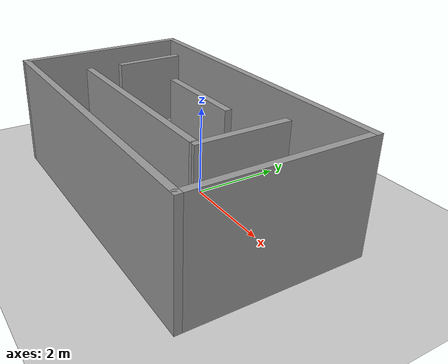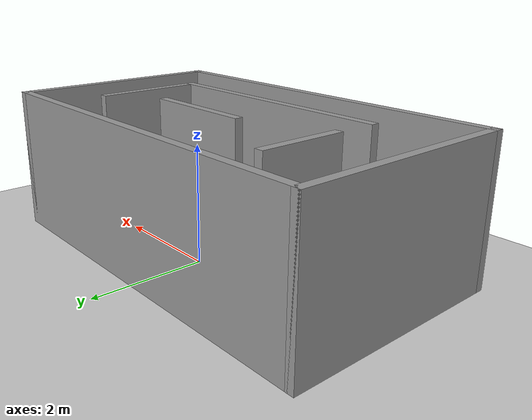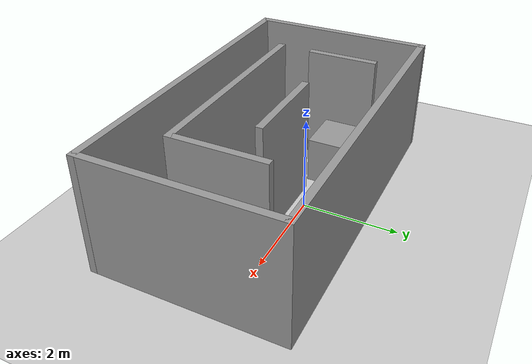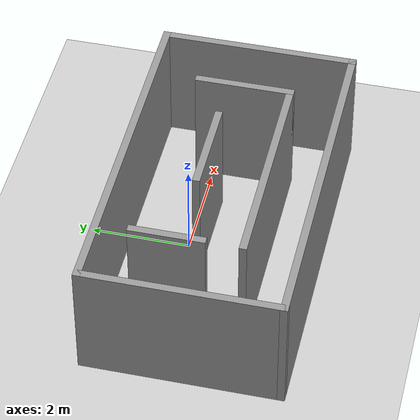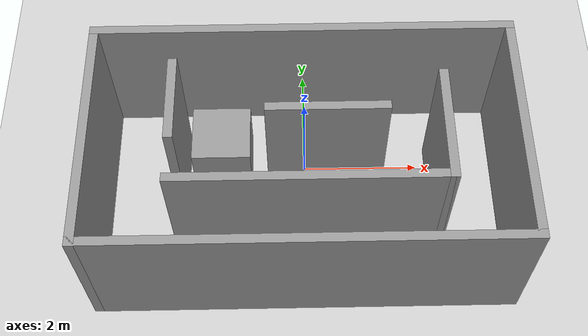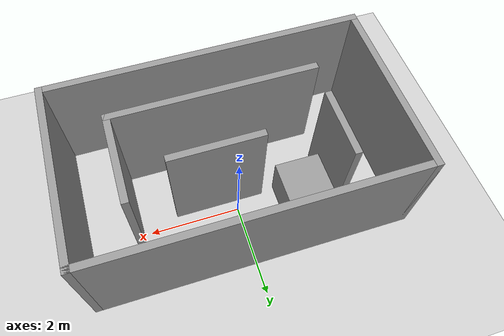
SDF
<sdf version="1.7">
 <world name="default">
  <light name="sun" type="directional">
   <pose>0 0 10 0 -0 0</pose>
   <diffuse>0.8 0.8 0.8 1</diffuse>
   <specular>0.2 0.2 0.2 1</specular>
   <attenuation>
    <range>1000</range>
    <constant>0.9</constant>
    <linear>0.01</linear>
    <quadratic>0.001</quadratic>
   </attenuation>
   <direction>-0.5 0.1 -0.9</direction>
   <spot><inner_angle>0</inner_angle><outer_angle>0</outer_angle><falloff>0</falloff></spot>
  </light>
  <model name="ground_plane">
   <static>1</static>
   <link name="link">
    <collision name="collision">
     <geometry><plane><normal>0 0 1</normal><size>100 100</size></plane></geometry>
     <surface><friction><ode><mu>100</mu><mu2>50</mu2></ode></friction></surface>
    </collision>
    <visual name="visual">
     <cast_shadows>0</cast_shadows>
     <geometry><plane><normal>0 0 1</normal><size>100 100</size></plane></geometry>
     <material>
      <script><uri>file://media/materials/scripts/gazebo.material</uri><name>Gazebo/Grey</name></script>
     </material>
    </visual>
   </link>
  </model>
  <gravity>0 0 -9.8</gravity>
  <magnetic_field>6e-06 2.3e-05 -4.2e-05</magnetic_field>
  <atmosphere type="adiabatic"/>
  <physics type="ode">
   <max_step_size>0.001</max_step_size>
   <real_time_factor>1</real_time_factor>
   <real_time_update_rate>1000</real_time_update_rate>
  </physics>
  <scene><ambient>0.4 0.4 0.4 1</ambient><background>0.7 0.7 0.7 1</background><shadows>1</shadows></scene>
  <audio><device>default</device></audio>
  <spherical_coordinates>
   <surface_model>EARTH_WGS84</surface_model>
   <latitude_deg>0</latitude_deg>
   <longitude_deg>0</longitude_deg>
   <elevation>0</elevation>
   <heading_deg>0</heading_deg>
  </spherical_coordinates>
  <model name="room">
   <pose>-0.018147 0.067955 0 0 -0 0</pose>
   <link name="Wall_1">
    <collision name="Wall_1_Collision">
     <geometry><box><size>7 0.15 2.5</size></box></geometry>
     <pose>0 0 1.25 0 -0 0</pose>
    </collision>
    <visual name="Wall_1_Visual">
     <pose>0 0 1.25 0 -0 0</pose>
     <geometry><box><size>7 0.15 2.5</size></box></geometry>
     <material>
      <script><uri>file://media/materials/scripts/gazebo.material</uri><name>Gazebo/Grey</name></script>
      <ambient>1 1 1 1</ambient>
     </material>
     <meta><layer>0</layer></meta>
    </visual>
    <pose>-0 1.1875 0 0 -0 0</pose>
   </link>
   <link name="Wall_12">
    <collision name="Wall_12_Collision">
     <geometry><box><size>2 0.15 2.5</size></box></geometry>
     <pose>0 0 1.25 0 -0 0</pose>
    </collision>
    <visual name="Wall_12_Visual">
     <pose>0 0 1.25 0 -0 0</pose>
     <geometry><box><size>2 0.15 2.5</size></box></geometry>
     <material>
      <script><uri>file://media/materials/scripts/gazebo.material</uri><name>Gazebo/Grey</name></script>
      <ambient>1 1 1 1</ambient>
     </material>
     <meta><layer>0</layer></meta>
    </visual>
    <pose>0.38 -0.3725 0 0 -0 0</pose>
   </link>
   <link name="Wall_16">
    <collision name="Wall_16_Collision">
     <geometry><box><size>1.5 0.15 2.5</size></box></geometry>
     <pose>0 0 1.25 0 -0 0</pose>
    </collision>
    <visual name="Wall_16_Visual">
     <pose>0 0 1.25 0 -0 0</pose>
     <geometry><box><size>1.5 0.15 2.5</size></box></geometry>
     <material>
      <script><uri>file://media/materials/scripts/gazebo.material</uri><name>Gazebo/Grey</name></script>
      <ambient>1 1 1 1</ambient>
     </material>
     <meta><layer>0</layer></meta>
    </visual>
    <pose>-2.105 -0.1675 0 0 -0 1.5708</pose>
   </link>
   <link name="Wall_2">
    <collision name="Wall_2_Collision">
     <geometry><box><size>4 0.15 2.5</size></box></geometry>
     <pose>0 0 1.25 0 -0 0</pose>
    </collision>
    <visual name="Wall_2_Visual">
     <pose>0 0 1.25 0 -0 0</pose>
     <geometry><box><size>4 0.15 2.5</size></box></geometry>
     <material>
      <script><uri>file://media/materials/scripts/gazebo.material</uri><name>Gazebo/Grey</name></script>
      <ambient>1 1 1 1</ambient>
     </material>
     <meta><layer>0</layer></meta>
    </visual>
    <pose>3.425 -0.7375 0 0 -0 -1.5708</pose>
   </link>
   <link name="Wall_3">
    <collision name="Wall_3_Collision">
     <geometry><box><size>7 0.15 2.5</size></box></geometry>
     <pose>0 0 1.25 0 -0 0</pose>
    </collision>
    <visual name="Wall_3_Visual">
     <pose>0 0 1.25 0 -0 0</pose>
     <geometry><box><size>7 0.15 2.5</size></box></geometry>
     <material>
      <script><uri>file://media/materials/scripts/gazebo.material</uri><name>Gazebo/Grey</name></script>
      <ambient>1 1 1 1</ambient>
     </material>
     <meta><layer>0</layer></meta>
    </visual>
    <pose>-0 -2.6625 0 0 -0 3.14159</pose>
   </link>
   <link name="Wall_4">
    <collision name="Wall_4_Collision">
     <geometry><box><size>4 0.15 2.5</size></box></geometry>
     <pose>0 0 1.25 0 -0 0</pose>
    </collision>
    <visual name="Wall_4_Visual">
     <pose>0 0 1.25 0 -0 0</pose>
     <geometry><box><size>4 0.15 2.5</size></box></geometry>
     <material>
      <script><uri>file://media/materials/scripts/gazebo.material</uri><name>Gazebo/Grey</name></script>
      <ambient>1 1 1 1</ambient>
     </material>
     <meta><layer>0</layer></meta>
    </visual>
    <pose>-3.425 -0.7375 0 0 -0 1.5708</pose>
   </link>
   <link name="Wall_6">
    <collision name="Wall_6_Collision">
     <geometry><box><size>4.5 0.15 2.5</size></box></geometry>
     <pose>0 0 1.25 0 -0 0</pose>
    </collision>
    <visual name="Wall_6_Visual">
     <pose>0 0 1.25 0 -0 0</pose>
     <geometry><box><size>4.5 0.15 2.5</size></box></geometry>
     <material>
      <script><uri>file://media/materials/scripts/gazebo.material</uri><name>Gazebo/Grey</name></script>
      <ambient>1 1 1 1</ambient>
     </material>
     <meta><layer>0</layer></meta>
    </visual>
    <pose>0.08 -1.6225 0 0 -0 0</pose>
   </link>
   <link name="Wall_7">
    <collision name="Wall_7_Collision">
     <geometry><box><size>2 0.15 2.5</size></box></geometry>
     <pose>0 0 1.25 0 -0 0</pose>
    </collision>
    <visual name="Wall_7_Visual">
     <pose>0 0 1.25 0 -0 0</pose>
     <geometry><box><size>2 0.15 2.5</size></box></geometry>
     <material>
      <script><uri>file://media/materials/scripts/gazebo.material</uri><name>Gazebo/Grey</name></script>
      <ambient>1 1 1 1</ambient>
     </material>
     <meta><layer>0</layer></meta>
    </visual>
    <pose>2.255 -0.6975 0 0 -0 1.5708</pose>
   </link>
   <static>1</static>
  </model>
  <model name="unit_box">
   <pose>-1.43434 0.172479 0.5 0 -0 0</pose>
   <link name="link">
    <inertial>
     <mass>1</mass>
     <inertia>
      <ixx>0.166667</ixx>
      <ixy>0</ixy>
      <ixz>0</ixz>
      <iyy>0.166667</iyy>
      <iyz>0</iyz>
      <izz>0.166667</izz>
     </inertia>
    </inertial>
    <collision name="collision"><geometry><box><size>1 1 1</size></box></geometry></collision>
    <visual name="visual">
     <geometry><box><size>1 1 1</size></box></geometry>
     <material>
      <script><name>Gazebo/Grey</name><uri>file://media/materials/scripts/gazebo.material</uri></script>
     </material>
    </visual>
   </link>
  </model>
 </world>
</sdf>
